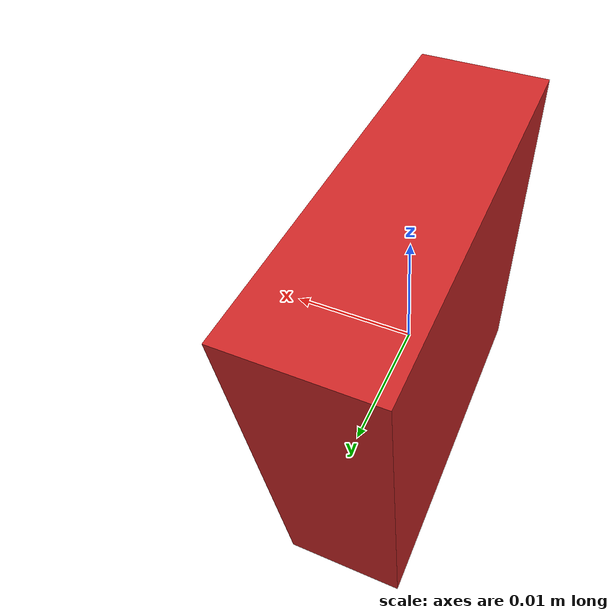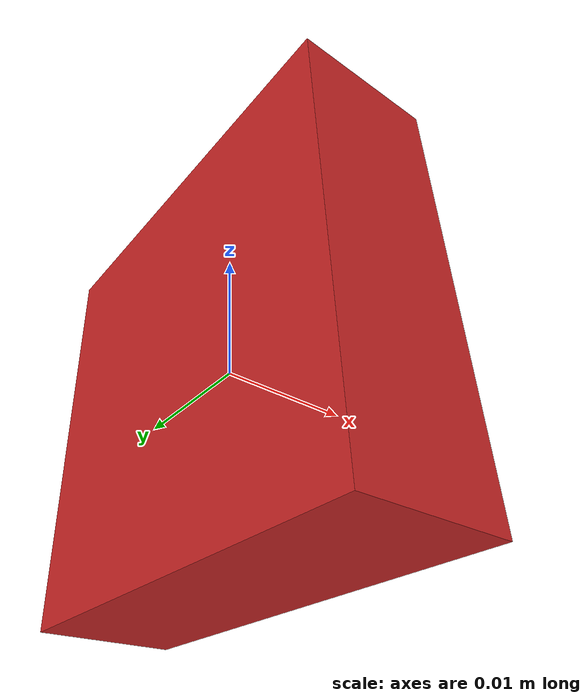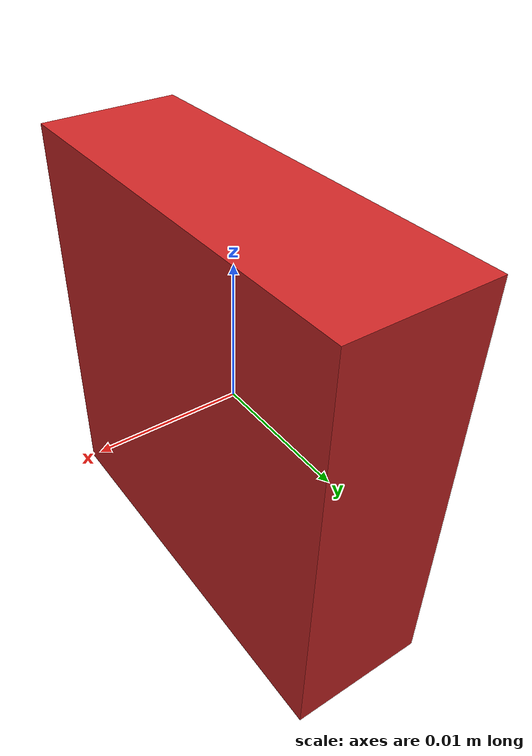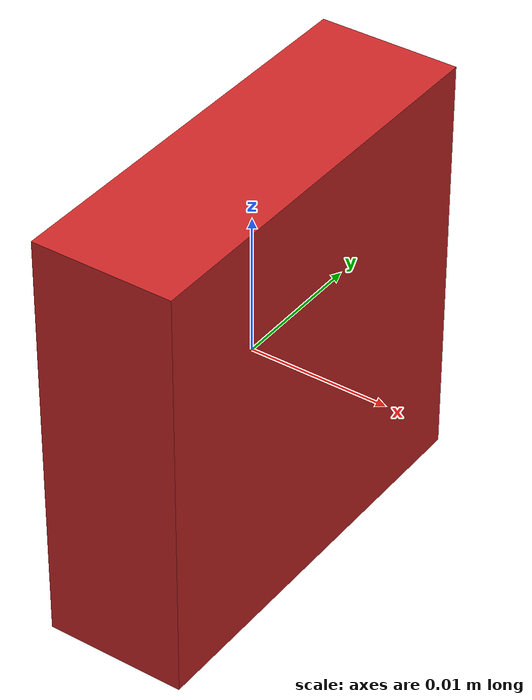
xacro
<?xml version="1.0"?>
<robot xmlns:xacro="http://www.ros.org/wiki/xacro" >

    <joint name="camera_joint" type="fixed">
        <child link="camera_link"/>
        <origin xyz="0.305 0 0.08" rpy="0 0 0"/>
    </joint>

    <link name="camera_link">
        <visual>
            <geometry>
                <box size="0.010 0.03 0.03"/>
            </geometry>
            <material name="red"/>
        </visual>
    </link>

    <joint name="camera_optical_joint" type="fixed">
        <parent link="camera_link"/>
        <child link="camera_link_optical"/>
        <origin xyz="0 0 0" rpy="${-pi/2} 0 ${-pi/2}"/>
    </joint>

    <link name="camera_link_optical"></link>

    <gazebo reference="camera_link">
        <material>Gazebo/Red</material>

        <sensor name="camera" type="camera">
            <pose> 0 0 0 0 0 0 </pose>
            <visualize>true</visualize>
            <update_rate>10</update_rate>
            <camera>
                <horizontal_fov>1.089</horizontal_fov>
                <image>
                    <format>B8G8R8</format>
                    <width>640</width>
                    <height>480</height>
                </image>
                <clip>
                    <near>0.05</near>
                    <far>8.0</far>
                </clip>
            </camera>
            <plugin name="camera_controller" filename="libgazebo_ros_camera.so">
                <frame_name>camera_link_optical</frame_name>
            </plugin>
        </sensor>
    </gazebo>

</robot>
